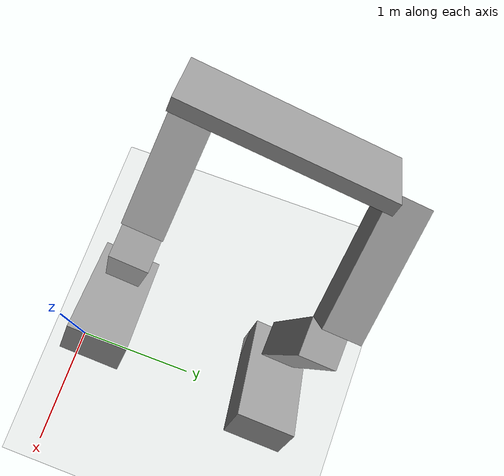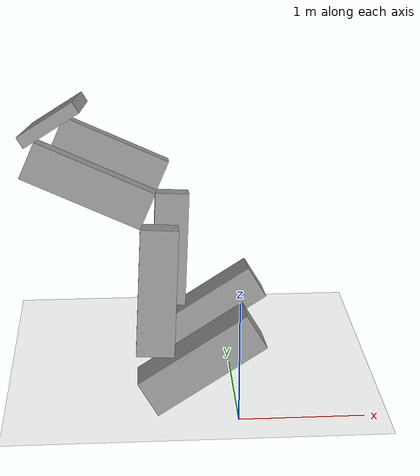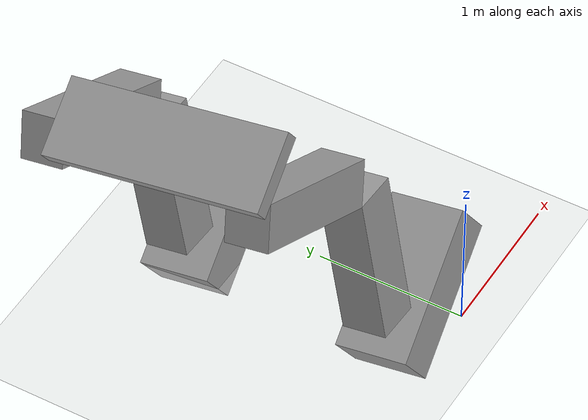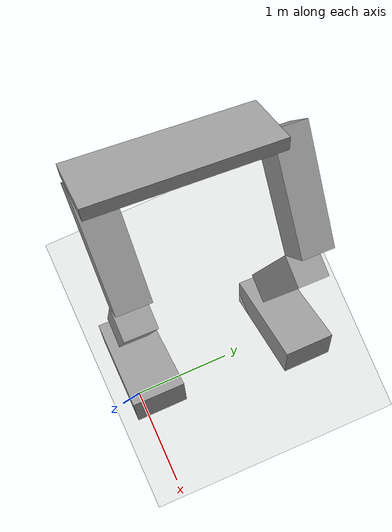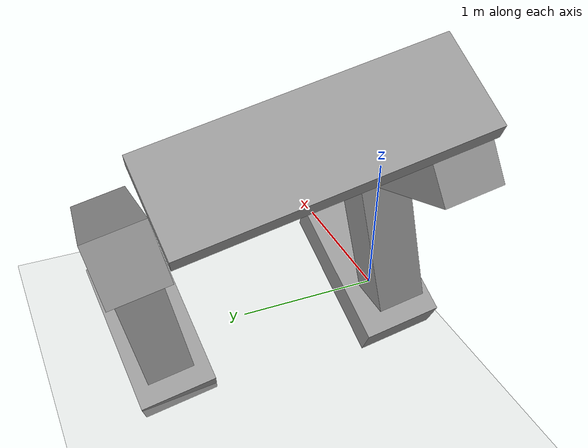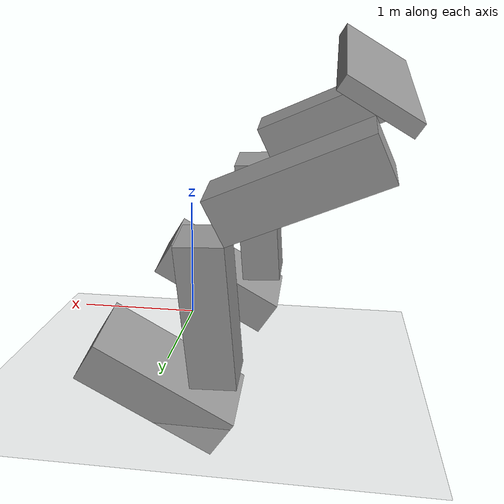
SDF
<sdf version="1.6">
 <world name="default">
  <model name="ground_plane">
   <static>1</static>
   <link name="link">
    <collision name="collision">
     <geometry><plane><normal>0 0 1</normal><size>100 100</size></plane></geometry>
     <surface>
      <contact><collide_bitmask>65535</collide_bitmask></contact>
      <friction><ode><mu>100</mu><mu2>50</mu2></ode></friction>
     </surface>
    </collision>
    <visual name="visual">
     <cast_shadows>0</cast_shadows>
     <geometry><plane><normal>0 0 1</normal><size>100 100</size></plane></geometry>
     <material>
      <script><uri>file://media/materials/scripts/gazebo.material</uri><name>Gazebo/Grey</name></script>
     </material>
    </visual>
   </link>
  </model>
  <model name="Humanoid">
   <link name="link_0">
    <pose>-0.048492 0.285713 -0.132344 0 -0 0</pose>
    <inertial>
     <mass>1</mass>
     <inertia>
      <ixx>0.166667</ixx>
      <ixy>0</ixy>
      <ixz>0</ixz>
      <iyy>0.166667</iyy>
      <iyz>0</iyz>
      <izz>0.166667</izz>
     </inertia>
    </inertial>
    <visual name="visual">
     <geometry><box><size>1 0.5 0.3</size></box></geometry>
     <material>
      <lighting>1</lighting>
      <script><uri>file://media/materials/scripts/gazebo.material</uri><name>Gazebo/Grey</name></script>
      <shader type="pixel"><normal_map>__default__</normal_map></shader>
      <ambient>0.3 0.3 0.3 1</ambient>
      <diffuse>0.7 0.7 0.7 1</diffuse>
      <specular>0.01 0.01 0.01 1</specular>
      <emissive>0 0 0 1</emissive>
     </material>
    </visual>
    <collision name="collision">
     <geometry><box><size>1 0.5 0.3</size></box></geometry>
     <surface>
      <friction>
       <ode><mu>1</mu><mu2>1</mu2><fdir1>0 0 0</fdir1><slip1>0</slip1><slip2>0</slip2></ode>
       <torsional>
        <coefficient>1</coefficient>
        <patch_radius>0</patch_radius>
        <surface_radius>0</surface_radius>
        <use_patch_radius>1</use_patch_radius>
        <ode><slip>0</slip></ode>
       </torsional>
      </friction>
      <bounce><restitution_coefficient>0</restitution_coefficient><threshold>1e+06</threshold></bounce>
      <contact>
       <collide_without_contact>0</collide_without_contact>
       <collide_without_contact_bitmask>1</collide_without_contact_bitmask>
       <collide_bitmask>1</collide_bitmask>
       <ode>
        <soft_cfm>0</soft_cfm>
        <soft_erp>0.2</soft_erp>
        <kp>1e+13</kp>
        <kd>1</kd>
        <max_vel>0.01</max_vel>
        <min_depth>0</min_depth>
       </ode>
       <bullet>
        <split_impulse>1</split_impulse>
        <split_impulse_penetration_threshold>-0.01</split_impulse_penetration_threshold>
        <soft_cfm>0</soft_cfm>
        <soft_erp>0.2</soft_erp>
        <kp>1e+13</kp>
        <kd>1</kd>
       </bullet>
      </contact>
     </surface>
    </collision>
   </link>
   <link name="link_0_clone">
    <pose>0.107629 1.78606 -0.132344 0 -0 0</pose>
    <inertial>
     <mass>1</mass>
     <inertia>
      <ixx>0.166667</ixx>
      <ixy>0</ixy>
      <ixz>0</ixz>
      <iyy>0.166667</iyy>
      <iyz>0</iyz>
      <izz>0.166667</izz>
     </inertia>
    </inertial>
    <visual name="visual">
     <geometry><box><size>1 0.5 0.3</size></box></geometry>
     <material>
      <lighting>1</lighting>
      <script><uri>file://media/materials/scripts/gazebo.material</uri><name>Gazebo/Grey</name></script>
      <shader type="pixel"><normal_map>__default__</normal_map></shader>
      <ambient>0.3 0.3 0.3 1</ambient>
      <diffuse>0.7 0.7 0.7 1</diffuse>
      <specular>0.01 0.01 0.01 1</specular>
      <emissive>0 0 0 1</emissive>
     </material>
    </visual>
    <collision name="collision">
     <geometry><box><size>1 0.5 0.3</size></box></geometry>
     <surface>
      <friction>
       <ode><mu>1</mu><mu2>1</mu2><fdir1>0 0 0</fdir1><slip1>0</slip1><slip2>0</slip2></ode>
       <torsional>
        <coefficient>1</coefficient>
        <patch_radius>0</patch_radius>
        <surface_radius>0</surface_radius>
        <use_patch_radius>1</use_patch_radius>
        <ode><slip>0</slip></ode>
       </torsional>
      </friction>
      <bounce><restitution_coefficient>0</restitution_coefficient><threshold>1e+06</threshold></bounce>
      <contact>
       <collide_without_contact>0</collide_without_contact>
       <collide_without_contact_bitmask>1</collide_without_contact_bitmask>
       <collide_bitmask>1</collide_bitmask>
       <ode>
        <soft_cfm>0</soft_cfm>
        <soft_erp>0.2</soft_erp>
        <kp>1e+13</kp>
        <kd>1</kd>
        <max_vel>0.01</max_vel>
        <min_depth>0</min_depth>
       </ode>
       <bullet>
        <split_impulse>1</split_impulse>
        <split_impulse_penetration_threshold>-0.01</split_impulse_penetration_threshold>
        <soft_cfm>0</soft_cfm>
        <soft_erp>0.2</soft_erp>
        <kp>1e+13</kp>
        <kd>1</kd>
       </bullet>
      </contact>
     </surface>
    </collision>
   </link>
   <link name="link_1">
    <pose>-0.048492 0.285713 0.51502 0 0.6 0</pose>
    <inertial>
     <mass>1</mass>
     <inertia>
      <ixx>0.166667</ixx>
      <ixy>0</ixy>
      <ixz>0</ixz>
      <iyy>0.166667</iyy>
      <iyz>0</iyz>
      <izz>0.166667</izz>
     </inertia>
    </inertial>
    <visual name="visual">
     <geometry><box><size>0.3 0.3 1</size></box></geometry>
     <material>
      <lighting>1</lighting>
      <script><uri>file://media/materials/scripts/gazebo.material</uri><name>Gazebo/Grey</name></script>
      <shader type="pixel"><normal_map>__default__</normal_map></shader>
      <ambient>0.3 0.3 0.3 1</ambient>
      <diffuse>0.7 0.7 0.7 1</diffuse>
      <specular>0.01 0.01 0.01 1</specular>
      <emissive>0 0 0 1</emissive>
     </material>
    </visual>
    <collision name="collision">
     <geometry><box><size>0.3 0.3 1</size></box></geometry>
     <surface>
      <friction>
       <ode><mu>1</mu><mu2>1</mu2><fdir1>0 0 0</fdir1><slip1>0</slip1><slip2>0</slip2></ode>
       <torsional>
        <coefficient>1</coefficient>
        <patch_radius>0</patch_radius>
        <surface_radius>0</surface_radius>
        <use_patch_radius>1</use_patch_radius>
        <ode><slip>0</slip></ode>
       </torsional>
      </friction>
      <bounce><restitution_coefficient>0</restitution_coefficient><threshold>1e+06</threshold></bounce>
      <contact>
       <collide_without_contact>0</collide_without_contact>
       <collide_without_contact_bitmask>1</collide_without_contact_bitmask>
       <collide_bitmask>1</collide_bitmask>
       <ode>
        <soft_cfm>0</soft_cfm>
        <soft_erp>0.2</soft_erp>
        <kp>1e+13</kp>
        <kd>1</kd>
        <max_vel>0.01</max_vel>
        <min_depth>0</min_depth>
       </ode>
       <bullet>
        <split_impulse>1</split_impulse>
        <split_impulse_penetration_threshold>-0.01</split_impulse_penetration_threshold>
        <soft_cfm>0</soft_cfm>
        <soft_erp>0.2</soft_erp>
        <kp>1e+13</kp>
        <kd>1</kd>
       </bullet>
      </contact>
     </surface>
    </collision>
   </link>
   <link name="link_1_clone">
    <pose>-0.048492 0.285713 1.50975 0 -0.6 0</pose>
    <inertial>
     <mass>1</mass>
     <inertia>
      <ixx>0.166667</ixx>
      <ixy>0</ixy>
      <ixz>0</ixz>
      <iyy>0.166667</iyy>
      <iyz>0</iyz>
      <izz>0.166667</izz>
     </inertia>
    </inertial>
    <visual name="visual">
     <geometry><box><size>0.3 0.3 1</size></box></geometry>
     <material>
      <lighting>1</lighting>
      <script><uri>file://media/materials/scripts/gazebo.material</uri><name>Gazebo/Grey</name></script>
      <shader type="pixel"><normal_map>__default__</normal_map></shader>
      <ambient>0.3 0.3 0.3 1</ambient>
      <diffuse>0.7 0.7 0.7 1</diffuse>
      <specular>0.01 0.01 0.01 1</specular>
      <emissive>0 0 0 1</emissive>
     </material>
    </visual>
    <collision name="collision">
     <geometry><box><size>0.3 0.3 1</size></box></geometry>
     <surface>
      <friction>
       <ode><mu>1</mu><mu2>1</mu2><fdir1>0 0 0</fdir1><slip1>0</slip1><slip2>0</slip2></ode>
       <torsional>
        <coefficient>1</coefficient>
        <patch_radius>0</patch_radius>
        <surface_radius>0</surface_radius>
        <use_patch_radius>1</use_patch_radius>
        <ode><slip>0</slip></ode>
       </torsional>
      </friction>
      <bounce><restitution_coefficient>0</restitution_coefficient><threshold>1e+06</threshold></bounce>
      <contact>
       <collide_without_contact>0</collide_without_contact>
       <collide_without_contact_bitmask>1</collide_without_contact_bitmask>
       <collide_bitmask>1</collide_bitmask>
       <ode>
        <soft_cfm>0</soft_cfm>
        <soft_erp>0.2</soft_erp>
        <kp>1e+13</kp>
        <kd>1</kd>
        <max_vel>0.01</max_vel>
        <min_depth>0</min_depth>
       </ode>
       <bullet>
        <split_impulse>1</split_impulse>
        <split_impulse_penetration_threshold>-0.01</split_impulse_penetration_threshold>
        <soft_cfm>0</soft_cfm>
        <soft_erp>0.2</soft_erp>
        <kp>1e+13</kp>
        <kd>1</kd>
       </bullet>
      </contact>
     </surface>
    </collision>
   </link>
   <link name="link_1_clone_0">
    <pose>0.107629 1.78606 0.51502 0 0.6 0</pose>
    <inertial>
     <mass>1</mass>
     <inertia>
      <ixx>0.166667</ixx>
      <ixy>0</ixy>
      <ixz>0</ixz>
      <iyy>0.166667</iyy>
      <iyz>0</iyz>
      <izz>0.166667</izz>
     </inertia>
    </inertial>
    <visual name="visual">
     <geometry><box><size>0.3 0.3 1</size></box></geometry>
     <material>
      <lighting>1</lighting>
      <script><uri>file://media/materials/scripts/gazebo.material</uri><name>Gazebo/Grey</name></script>
      <shader type="pixel"><normal_map>__default__</normal_map></shader>
      <ambient>0.3 0.3 0.3 1</ambient>
      <diffuse>0.7 0.7 0.7 1</diffuse>
      <specular>0.01 0.01 0.01 1</specular>
      <emissive>0 0 0 1</emissive>
     </material>
    </visual>
    <collision name="collision">
     <geometry><box><size>0.3 0.3 1</size></box></geometry>
     <surface>
      <friction>
       <ode><mu>1</mu><mu2>1</mu2><fdir1>0 0 0</fdir1><slip1>0</slip1><slip2>0</slip2></ode>
       <torsional>
        <coefficient>1</coefficient>
        <patch_radius>0</patch_radius>
        <surface_radius>0</surface_radius>
        <use_patch_radius>1</use_patch_radius>
        <ode><slip>0</slip></ode>
       </torsional>
      </friction>
      <bounce><restitution_coefficient>0</restitution_coefficient><threshold>1e+06</threshold></bounce>
      <contact>
       <collide_without_contact>0</collide_without_contact>
       <collide_without_contact_bitmask>1</collide_without_contact_bitmask>
       <collide_bitmask>1</collide_bitmask>
       <ode>
        <soft_cfm>0</soft_cfm>
        <soft_erp>0.2</soft_erp>
        <kp>1e+13</kp>
        <kd>1</kd>
        <max_vel>0.01</max_vel>
        <min_depth>0</min_depth>
       </ode>
       <bullet>
        <split_impulse>1</split_impulse>
        <split_impulse_penetration_threshold>-0.01</split_impulse_penetration_threshold>
        <soft_cfm>0</soft_cfm>
        <soft_erp>0.2</soft_erp>
        <kp>1e+13</kp>
        <kd>1</kd>
       </bullet>
      </contact>
     </surface>
    </collision>
   </link>
   <link name="link_1_clone_clone">
    <pose>0.107629 1.78606 1.50975 0 -0.6 0</pose>
    <inertial>
     <mass>1</mass>
     <inertia>
      <ixx>0.166667</ixx>
      <ixy>0</ixy>
      <ixz>0</ixz>
      <iyy>0.166667</iyy>
      <iyz>0</iyz>
      <izz>0.166667</izz>
     </inertia>
    </inertial>
    <visual name="visual">
     <geometry><box><size>0.3 0.3 1</size></box></geometry>
     <material>
      <lighting>1</lighting>
      <script><uri>file://media/materials/scripts/gazebo.material</uri><name>Gazebo/Grey</name></script>
      <shader type="pixel"><normal_map>__default__</normal_map></shader>
      <ambient>0.3 0.3 0.3 1</ambient>
      <diffuse>0.7 0.7 0.7 1</diffuse>
      <specular>0.01 0.01 0.01 1</specular>
      <emissive>0 0 0 1</emissive>
     </material>
    </visual>
    <collision name="collision">
     <geometry><box><size>0.3 0.3 1</size></box></geometry>
     <surface>
      <friction>
       <ode><mu>1</mu><mu2>1</mu2><fdir1>0 0 0</fdir1><slip1>0</slip1><slip2>0</slip2></ode>
       <torsional>
        <coefficient>1</coefficient>
        <patch_radius>0</patch_radius>
        <surface_radius>0</surface_radius>
        <use_patch_radius>1</use_patch_radius>
        <ode><slip>0</slip></ode>
       </torsional>
      </friction>
      <bounce><restitution_coefficient>0</restitution_coefficient><threshold>1e+06</threshold></bounce>
      <contact>
       <collide_without_contact>0</collide_without_contact>
       <collide_without_contact_bitmask>1</collide_without_contact_bitmask>
       <collide_bitmask>1</collide_bitmask>
       <ode>
        <soft_cfm>0</soft_cfm>
        <soft_erp>0.2</soft_erp>
        <kp>1e+13</kp>
        <kd>1</kd>
        <max_vel>0.01</max_vel>
        <min_depth>0</min_depth>
       </ode>
       <bullet>
        <split_impulse>1</split_impulse>
        <split_impulse_penetration_threshold>-0.01</split_impulse_penetration_threshold>
        <soft_cfm>0</soft_cfm>
        <soft_erp>0.2</soft_erp>
        <kp>1e+13</kp>
        <kd>1</kd>
       </bullet>
      </contact>
     </surface>
    </collision>
   </link>
   <link name="link_2">
    <pose>-0.048492 0.885713 2.05711 0 -0 0</pose>
    <inertial>
     <mass>1</mass>
     <inertia>
      <ixx>0.166667</ixx>
      <ixy>0</ixy>
      <ixz>0</ixz>
      <iyy>0.166667</iyy>
      <iyz>0</iyz>
      <izz>0.166667</izz>
     </inertia>
    </inertial>
    <visual name="visual">
     <geometry><box><size>0.5 1.5 0.1</size></box></geometry>
     <material>
      <lighting>1</lighting>
      <script><uri>file://media/materials/scripts/gazebo.material</uri><name>Gazebo/Grey</name></script>
      <shader type="pixel"><normal_map>__default__</normal_map></shader>
      <ambient>0.3 0.3 0.3 1</ambient>
      <diffuse>0.7 0.7 0.7 1</diffuse>
      <specular>0.01 0.01 0.01 1</specular>
      <emissive>0 0 0 1</emissive>
     </material>
    </visual>
    <collision name="collision">
     <geometry><box><size>0.5 1.5 0.1</size></box></geometry>
     <surface>
      <friction>
       <ode><mu>1</mu><mu2>1</mu2><fdir1>0 0 0</fdir1><slip1>0</slip1><slip2>0</slip2></ode>
       <torsional>
        <coefficient>1</coefficient>
        <patch_radius>0</patch_radius>
        <surface_radius>0</surface_radius>
        <use_patch_radius>1</use_patch_radius>
        <ode><slip>0</slip></ode>
       </torsional>
      </friction>
      <bounce><restitution_coefficient>0</restitution_coefficient><threshold>1e+06</threshold></bounce>
      <contact>
       <collide_without_contact>0</collide_without_contact>
       <collide_without_contact_bitmask>1</collide_without_contact_bitmask>
       <collide_bitmask>1</collide_bitmask>
       <ode>
        <soft_cfm>0</soft_cfm>
        <soft_erp>0.2</soft_erp>
        <kp>1e+13</kp>
        <kd>1</kd>
        <max_vel>0.01</max_vel>
        <min_depth>0</min_depth>
       </ode>
       <bullet>
        <split_impulse>1</split_impulse>
        <split_impulse_penetration_threshold>-0.01</split_impulse_penetration_threshold>
        <soft_cfm>0</soft_cfm>
        <soft_erp>0.2</soft_erp>
        <kp>1e+13</kp>
        <kd>1</kd>
       </bullet>
      </contact>
     </surface>
    </collision>
   </link>
   <joint name="link_1_JOINT_9" type="revolute">
    <parent>link_1</parent>
    <child>link_0</child>
    <axis>
     <xyz>1 0 0</xyz>
     <use_parent_model_frame>0</use_parent_model_frame>
     <limit>
      <lower>-1.79769e+308</lower>
      <upper>1.79769e+308</upper>
      <effort>-1</effort>
      <velocity>-1</velocity>
     </limit>
     <dynamics>
      <spring_reference>0</spring_reference>
      <spring_stiffness>0</spring_stiffness>
      <damping>0</damping>
      <friction>0</friction>
     </dynamics>
    </axis>
    <physics>
     <ode><limit><cfm>0</cfm><erp>0.2</erp></limit><suspension><cfm>0</cfm><erp>0.2</erp></suspension></ode>
    </physics>
   </joint>
   <joint name="link_1_clone_0_JOINT_10" type="revolute">
    <parent>link_1_clone_0</parent>
    <child>link_0_clone</child>
    <axis>
     <xyz>1 0 0</xyz>
     <use_parent_model_frame>0</use_parent_model_frame>
     <limit>
      <lower>-1.79769e+308</lower>
      <upper>1.79769e+308</upper>
      <effort>-1</effort>
      <velocity>-1</velocity>
     </limit>
     <dynamics>
      <spring_reference>0</spring_reference>
      <spring_stiffness>0</spring_stiffness>
      <damping>0</damping>
      <friction>0</friction>
     </dynamics>
    </axis>
    <physics>
     <ode><limit><cfm>0</cfm><erp>0.2</erp></limit><suspension><cfm>0</cfm><erp>0.2</erp></suspension></ode>
    </physics>
   </joint>
   <joint name="link_1_clone_JOINT_7" type="revolute">
    <parent>link_1_clone</parent>
    <child>link_1</child>
    <axis>
     <xyz>1 0 0</xyz>
     <use_parent_model_frame>0</use_parent_model_frame>
     <limit>
      <lower>-1.79769e+308</lower>
      <upper>1.79769e+308</upper>
      <effort>-1</effort>
      <velocity>-1</velocity>
     </limit>
     <dynamics>
      <spring_reference>0</spring_reference>
      <spring_stiffness>0</spring_stiffness>
      <damping>0</damping>
      <friction>0</friction>
     </dynamics>
    </axis>
    <physics>
     <ode><limit><cfm>0</cfm><erp>0.2</erp></limit><suspension><cfm>0</cfm><erp>0.2</erp></suspension></ode>
    </physics>
   </joint>
   <joint name="link_1_clone_clone_JOINT_8" type="revolute">
    <parent>link_1_clone_clone</parent>
    <child>link_1_clone_0</child>
    <axis>
     <xyz>1 0 0</xyz>
     <use_parent_model_frame>0</use_parent_model_frame>
     <limit>
      <lower>-1.79769e+308</lower>
      <upper>1.79769e+308</upper>
      <effort>-1</effort>
      <velocity>-1</velocity>
     </limit>
     <dynamics>
      <spring_reference>0</spring_reference>
      <spring_stiffness>0</spring_stiffness>
      <damping>0</damping>
      <friction>0</friction>
     </dynamics>
    </axis>
    <physics>
     <ode><limit><cfm>0</cfm><erp>0.2</erp></limit><suspension><cfm>0</cfm><erp>0.2</erp></suspension></ode>
    </physics>
   </joint>
   <joint name="link_2_JOINT_5" type="revolute">
    <parent>link_2</parent>
    <child>link_1_clone</child>
    <axis>
     <xyz>1 0 0</xyz>
     <use_parent_model_frame>0</use_parent_model_frame>
     <limit>
      <lower>-1.79769e+308</lower>
      <upper>1.79769e+308</upper>
      <effort>-1</effort>
      <velocity>-1</velocity>
     </limit>
     <dynamics>
      <spring_reference>0</spring_reference>
      <spring_stiffness>0</spring_stiffness>
      <damping>0</damping>
      <friction>0</friction>
     </dynamics>
    </axis>
    <physics>
     <ode><limit><cfm>0</cfm><erp>0.2</erp></limit><suspension><cfm>0</cfm><erp>0.2</erp></suspension></ode>
    </physics>
   </joint>
   <joint name="link_2_JOINT_6" type="revolute">
    <parent>link_2</parent>
    <child>link_1_clone_clone</child>
    <axis>
     <xyz>1 0 0</xyz>
     <use_parent_model_frame>0</use_parent_model_frame>
     <limit>
      <lower>-1.79769e+308</lower>
      <upper>1.79769e+308</upper>
      <effort>-1</effort>
      <velocity>-1</velocity>
     </limit>
     <dynamics>
      <spring_reference>0</spring_reference>
      <spring_stiffness>0</spring_stiffness>
      <damping>0</damping>
      <friction>0</friction>
     </dynamics>
    </axis>
    <physics>
     <ode><limit><cfm>0</cfm><erp>0.2</erp></limit><suspension><cfm>0</cfm><erp>0.2</erp></suspension></ode>
    </physics>
   </joint>
   <static>1</static>
   <pose>-0.317711 -0.030167 0.63133 -0.239963 -0.538351 0.109355</pose>
  </model>
 </world>
</sdf>
